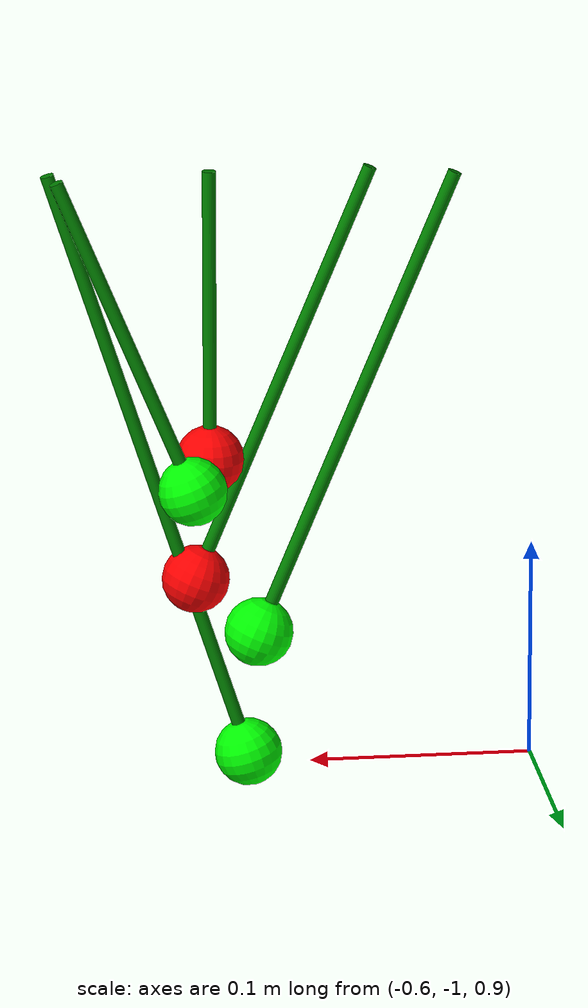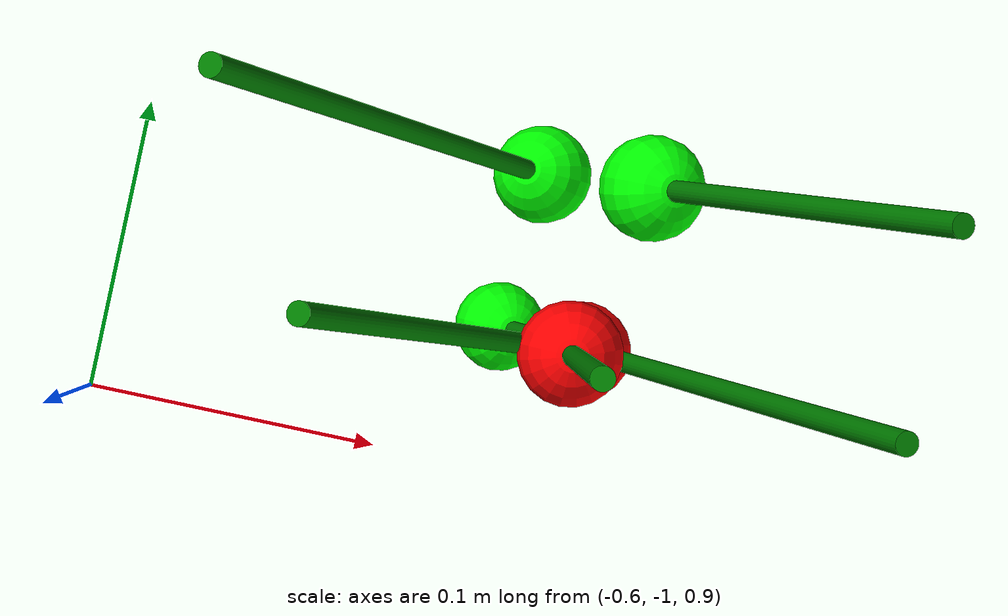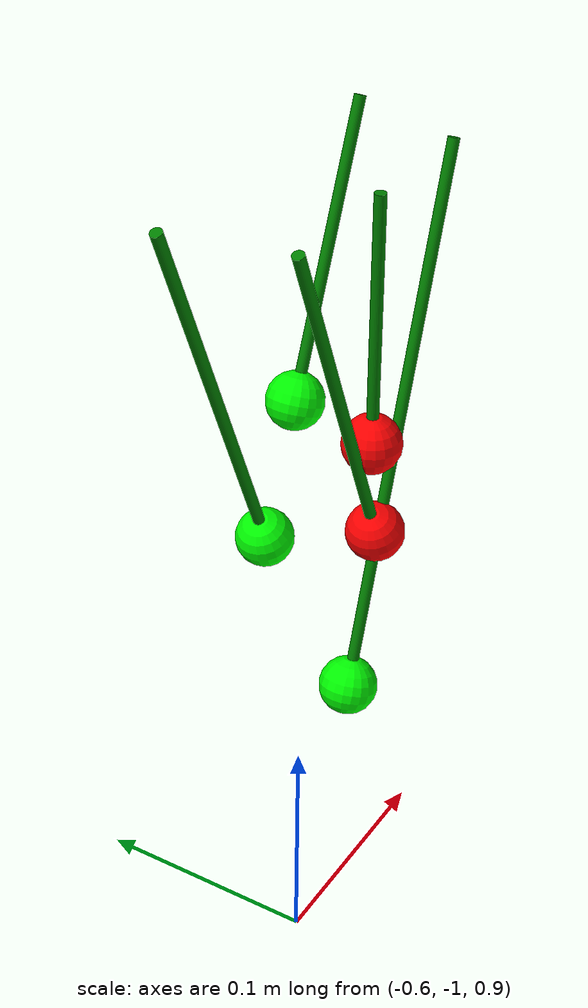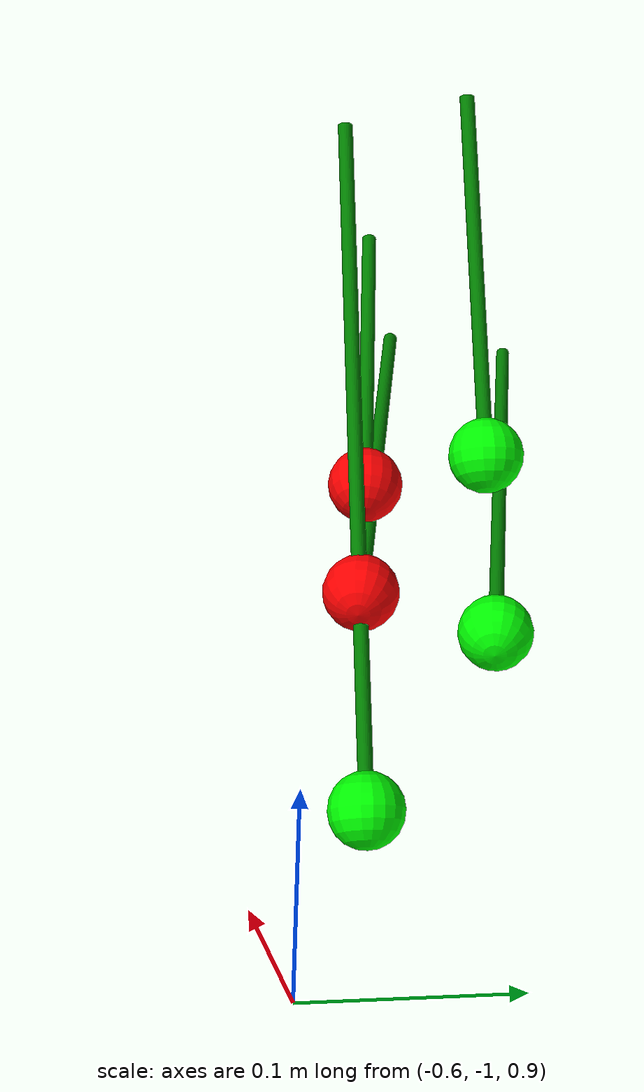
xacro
<?xml version="1.0"?>
<robot xmlns:xacro="http://www.ros.org/wiki/xacro" name="straw_cluster11">

<xacro:arg name="tf_prefix" default=""/>

<link name="world"/>

<xacro:arg name="parent_cluster" default="world"/>

<!-- Robot21 -->
<link name="$(arg tf_prefix)/yball_stem111">
  <gravity>1</gravity>
  <inertial>
    <origin xyz="0 0 0" rpy="0 0 0"/>
    <mass value=".00001"/>
    <inertia ixx="0.0000004" ixy="0.0" ixz="0.0" iyy="0.0000004" iyz="0.0" izz="0.0000004" />
  </inertial>
  <visual><geometry><sphere radius=".00001"/></geometry></visual>
  <collision><geometry><sphere radius=".00001"/></geometry></collision>
</link>
<gazebo reference="$(arg tf_prefix)/yball_stem111">
  <material>Gazebo/Green</material>
</gazebo>

<joint name="$(arg tf_prefix)/stem111y" type="revolute" >
  <parent link="$(arg parent_cluster)" />
  <child link="$(arg tf_prefix)/yball_stem111" />
  <origin xyz="-0.45 -0.95 1.19" rpy="0 0 0"/>
  <axis xyz="0 1 0" />
  <dynamics damping="0.0001" friction="0.0002"/>
  <limit
      lower="-${pi}" upper="${pi}"
      effort="0.1" velocity="1" />
</joint>

<link name="$(arg tf_prefix)/xball_stem111">
  <gravity>1</gravity>
  <inertial>
    <origin xyz="0 0 0" rpy="0 0 0"/>
    <mass value=".00001"/>
    <inertia ixx="0.0000004" ixy="0.0" ixz="0.0" iyy="0.0000004" iyz="0.0" izz="0.0000004" />
  </inertial>
  <visual><geometry><sphere radius=".00001"/></geometry></visual>
  <collision><geometry><sphere radius=".00001"/></geometry></collision>
</link>
<gazebo reference="$(arg tf_prefix)/xball_stem111">
  <material>Gazebo/Green</material>
</gazebo>

<joint name="$(arg tf_prefix)/stem111x" type="revolute" >
  <parent link="$(arg tf_prefix)/yball_stem111"/>
  <child link="$(arg tf_prefix)/xball_stem111"/>
  <origin xyz="0 0 0" rpy="0 0 0"/>
  <axis xyz="1 0 0" />
  <dynamics damping="0.0001" friction="0.0002" />
  <limit
      lower="-${pi}" upper="${pi}"
      effort="0.1" velocity="0.1" />
</joint>

<!-- Define stem of straw111 -->
<link name="$(arg tf_prefix)/stem111">
  <inertial>
    <origin xyz="0 0 0" rpy="0 0 0"/>
    <mass value="0.0002"/>
    <inertia
      ixx="0.0000000005" ixy="0.0" ixz="0.0"
      iyy="0.0000000005" iyz="0.0"
      izz="0.0000000005"/>
  </inertial>
  <collision>
    <geometry>
    <cylinder length="0.13" radius="0.003"/>
    </geometry>
    <material name="green">
      <color rgba="0 ${128/255} 0 1"/>
    </material>
    <origin xyz="0 0 -0.065" rpy="0 0 0"/>
  </collision>
  <visual>
    <geometry>
    <cylinder length="0.13" radius="0.003"/>
    </geometry>
    <material name="green">
      <color rgba="0 ${128/255} 0 1"/>
    </material>
    <origin xyz="0 0 -0.065" rpy="0 0 0"/>
  </visual>
</link>
<gazebo reference="$(arg tf_prefix)/stem111">
  <mu1>0.01</mu1>
  <mu2>0.01</mu2>
  <selfCollide>true</selfCollide>
  <maxContacts>2</maxContacts>
  <minDepth>0</minDepth>
  <maxVel>0.01</maxVel>
  <kp  value="1" />
  <kd  value="0.1" />
  <material>Gazebo/Green</material>
</gazebo>

<joint name="$(arg tf_prefix)/xball_stem111" type="fixed">
  <parent link="$(arg tf_prefix)/xball_stem111"/>
  <child link="$(arg tf_prefix)/stem111"/>
  <origin xyz="0 0 0" rpy="0 0 0"/>
</joint>

<!-- Define straw111 -->
<link name="$(arg tf_prefix)/straw111">
  <gravity>1</gravity>
  <inertial>
    <origin xyz="0 0 0" rpy="0 0 0"/>
    <mass value="0.0002"/>
    <inertia
      ixx="0.00000018" ixy="0.0" ixz="0.0"
      iyy="0.00000018" iyz="0.0"
      izz="0.00000018"/>
  </inertial>
  <collision>
    <geometry>
      <sphere radius="0.015"/>
    </geometry>
  </collision>
  <visual>
    <geometry>
    <sphere radius="0.015"/>
    </geometry>
    <material name="Red">
      <color rgba="1 0 0 1"/>
    </material>
  </visual>
</link>
<gazebo reference="$(arg tf_prefix)/straw111">
  <mu1>0.01</mu1>
  <mu2>0.01</mu2>
  <selfCollide>true</selfCollide>
  <maxContacts>2</maxContacts>
  <minDepth>0</minDepth>
  <maxVel>0.01</maxVel>
  <kp  value="1000" />
  <kd  value="1" />
  <material>Gazebo/Red</material>
</gazebo>

<joint name="$(arg tf_prefix)/straw1_stem111" type="revolute">
  <parent link="$(arg tf_prefix)/stem111"/>
  <child link="$(arg tf_prefix)/straw111"/>
  <origin xyz="0 0 -0.13" rpy="0 0 0"/>
  <axis xyz="0 1 0" />
  <dynamics damping="0.0000001" friction="0.0000002"/>
  <limit
      lower="-${pi}" upper="${pi}"
      effort="0.01" velocity="0.1" />
</joint>

<!-- Robot22 -->
<link name="$(arg tf_prefix)/yball_stem112">
  <gravity>1</gravity>
  <inertial>
    <origin xyz="0 0 0" rpy="0 0 0"/>
    <mass value=".00001"/>
    <inertia ixx="0.00001" ixy="0.0" ixz="0.0" iyy="0.00001" iyz="0.0" izz="0.00001" />
  </inertial>
  <visual><geometry><sphere radius=".00001"/></geometry></visual>
  <collision><geometry><sphere radius=".00001"/></geometry></collision>
</link>
<gazebo reference="$(arg tf_prefix)/yball_stem112">
  <material>Gazebo/Green</material>
</gazebo>

<joint name="$(arg tf_prefix)/stem112y" type="revolute" >
  <parent link="$(arg parent_cluster)" />
  <child link="$(arg tf_prefix)/yball_stem112" />
  <origin xyz="-0.38 -0.95 1.19" rpy="0 ${pi/10} 0"/>
  <axis xyz="0 1 0" />
  <dynamics damping="0.001" friction="0.002" />
  <limit
      lower="-${pi}" upper="${pi}"
      effort="100" velocity="1" />
</joint>

<link name="$(arg tf_prefix)/xball_stem112">
  <gravity>1</gravity>
  <inertial>
    <origin xyz="0 0 0" rpy="0 0 0"/>
    <mass value=".00001"/>
    <inertia ixx="0.00001" ixy="0.0" ixz="0.0" iyy="0.00001" iyz="0.0" izz="0.00001" />
  </inertial>
  <visual><geometry><sphere radius=".00001"/></geometry></visual>
  <collision><geometry><sphere radius=".00001"/></geometry></collision>
</link>
<gazebo reference="$(arg tf_prefix)/xball_stem112">
  <material>Gazebo/Green</material>
</gazebo>

<joint name="$(arg tf_prefix)/stem112x" type="revolute" >
  <parent link="$(arg tf_prefix)/yball_stem112"/>
  <child link="$(arg tf_prefix)/xball_stem112"/>
  <origin xyz="0 0 0" rpy="0 0 0"/>
  <axis xyz="1 0 0" />
  <dynamics damping="0.001" friction="0.002" />
  <limit
      lower="-${pi}" upper="${pi}"
      effort="100" velocity="1" />
</joint>

<!-- Define stem of straw112 -->
<link name="$(arg tf_prefix)/stem112">
  <gravity>1</gravity>
  <inertial>
    <origin xyz="0 0 0" rpy="0 0 0"/>
    <mass value="0.0001"/>
    <inertia
      ixx="0.0000000005" ixy="0.0" ixz="0.0"
      iyy="0.0000000005" iyz="0.0"
      izz="0.0000000005"/>
  </inertial>
  <collision>
    <geometry>
    <cylinder length="0.28" radius="0.003"/> <!-- was 0.15 -->
    </geometry>
    <material name="green">
      <color rgba="0 ${128/255} 0 1"/>
    </material>
    <origin xyz="0 0 -0.14" rpy="0 0 0"/>
  </collision>
  <visual>
    <geometry>
    <cylinder length="0.28" radius="0.003"/>
    </geometry>
    <material name="green">
      <color rgba="0 ${128/255} 0 1"/>
    </material>
    <origin xyz="0 0 -0.14" rpy="0 0 0"/>
  </visual>
</link>
<gazebo reference="$(arg tf_prefix)/stem112">
  <mu1>0.01</mu1>
  <mu2>0.01</mu2>
  <selfCollide>true</selfCollide>
  <maxContacts>2</maxContacts>
  <minDepth>0</minDepth>
  <maxVel>0.01</maxVel>
  <kp value="1000" />
  <kd value="1" />
  <material>Gazebo/Green</material>
</gazebo>

<joint name="$(arg tf_prefix)/xball_stem112" type="fixed">
  <parent link="$(arg tf_prefix)/xball_stem112"/>
  <child link="$(arg tf_prefix)/stem112"/>
  <origin xyz="0 0 0" rpy="0 0 0"/>
</joint>

<!-- Define straw112 -->
<link name="$(arg tf_prefix)/straw112">
  <gravity>1</gravity>
  <inertial>
    <origin xyz="0 0 0" rpy="0 0 0"/>
    <mass value="0.0002"/>
    <inertia
      ixx="0.00000018" ixy="0.0" ixz="0.0"
      iyy="0.00000018" iyz="0.0"
      izz="0.00000018"/>
  </inertial>
  <collision>
    <geometry>
      <sphere radius="0.015"/>
    </geometry>
  </collision>
  <visual>
    <geometry>
    <sphere radius="0.015"/>
    </geometry>
    <material name="green">
      <color rgba="0 1 0 1"/>
    </material>
  </visual>
</link>
<gazebo reference="$(arg tf_prefix)/straw112">
  <mu1>0.01</mu1>
  <mu2>0.01</mu2>
  <selfCollide>true</selfCollide>
  <maxContacts>2</maxContacts>
  <minDepth>0</minDepth>
  <maxVel>0.01</maxVel>
  <kp  value="1000" />
  <kd  value="1" />
  <material>Gazebo/Green</material>
</gazebo>

<joint name="$(arg tf_prefix)/straw112_stem112" type="revolute">
  <parent link="$(arg tf_prefix)/stem112"/>
  <child link="$(arg tf_prefix)/straw112"/>
  <origin xyz="0 0 -0.28" rpy="0 0 0"/>
  <axis xyz="0 1 0" />
  <dynamics damping="0.0000001" friction="0.0000002"/>
  <limit
      lower="-${pi}" upper="${pi}"
      effort="1" velocity="0.1" />
</joint>

<!-- Robot 23 -->
<link name="$(arg tf_prefix)/yball_stem113">
  <gravity>1</gravity>
  <inertial>
    <origin xyz="0 0 0" rpy="0 0 0"/>
    <mass value=".00001"/>
    <inertia ixx="0.00001" ixy="0.0" ixz="0.0" iyy="0.00001" iyz="0.0" izz="0.00001" />
  </inertial>
  <visual><geometry><sphere radius=".00001"/></geometry></visual>
  <collision><geometry><sphere radius=".00001"/></geometry></collision>
</link>
<gazebo reference="$(arg tf_prefix)/yball_stem113">
  <material>Gazebo/Green</material>
</gazebo>

<joint name="$(arg tf_prefix)/stem113y" type="revolute" >
  <parent link="$(arg parent_cluster)" />
  <child link="$(arg tf_prefix)/yball_stem113" />
  <origin xyz="-0.52 -0.95 1.19" rpy="0 ${-pi/8} 0"/>
  <axis xyz="0 1 0" />
  <dynamics damping="0.0001" friction="0.0002" />
  <limit
      lower="-${pi}" upper="${pi}"
      effort="10" velocity="1" />
</joint>

<link name="$(arg tf_prefix)/xball_stem113">
  <gravity>1</gravity>
  <inertial>
    <origin xyz="0 0 0" rpy="0 0 0"/>
    <mass value=".00001"/>
    <inertia ixx="0.00001" ixy="0.0" ixz="0.0" iyy="0.00001" iyz="0.0" izz="0.00001" />
  </inertial>
  <visual><geometry><sphere radius=".00001"/></geometry></visual>
  <collision><geometry><sphere radius=".00001"/></geometry></collision>
</link>
<gazebo reference="$(arg tf_prefix)/xball_stem113">
  <material>Gazebo/Green</material>
</gazebo>

<joint name="$(arg tf_prefix)/stem113x" type="revolute" >
  <parent link="$(arg tf_prefix)/yball_stem113"/>
  <child link="$(arg tf_prefix)/xball_stem113"/>
  <origin xyz="0 0 0" rpy="0 0 0"/>
  <axis xyz="1 0 0" />
  <dynamics damping="0.0001" friction="0.0002" />
  <limit
      lower="-${pi}" upper="${pi}"
      effort="10" velocity="1" />
</joint>

<!-- Define stem of straw113 -->
<link name="$(arg tf_prefix)/stem113">
  <gravity>1</gravity>
  <inertial>
    <origin xyz="0 0 0" rpy="0 0 0"/>
    <mass value="0.0001"/>
    <inertia
      ixx="0.0000000005" ixy="0.0" ixz="0.0"
      iyy="0.0000000005" iyz="0.0"
      izz="0.0000000005"/>
  </inertial>
  <collision>
    <geometry>
    <cylinder length="0.2" radius="0.003"/> <!-- was 0.15 -->
    </geometry>
    <material name="green">
      <color rgba="0 ${128/255} 0 1"/>
    </material>
    <origin xyz="0 0 -0.1" rpy="0 0 0"/>
  </collision>
  <visual>
    <geometry>
    <cylinder length="0.2" radius="0.003"/>
    </geometry>
    <material name="green">
      <color rgba="0 ${128/255} 0 1"/>
    </material>
    <origin xyz="0 0 -0.1" rpy="0 0 0"/>
  </visual>
</link>
<gazebo reference="$(arg tf_prefix)/stem113">
  <mu1>0.01</mu1>
  <mu2>0.01</mu2>
  <selfCollide>true</selfCollide>
  <maxContacts>2</maxContacts>
  <minDepth>0</minDepth>
  <maxVel>0.01</maxVel>
  <kp  value="10" />
  <kd  value="1" />
  <material>Gazebo/Green</material>
</gazebo>

<joint name="$(arg tf_prefix)/xball_stem113" type="fixed">
  <parent link="$(arg tf_prefix)/xball_stem113"/>
  <child link="$(arg tf_prefix)/stem113"/>
  <origin xyz="0 0 0" rpy="0 0 0"/>
</joint>

<!-- Define straw113 -->
<link name="$(arg tf_prefix)/straw113">
  <gravity>1</gravity>
  <inertial>
    <origin xyz="0 0 0" rpy="0 0 0"/>
    <mass value="0.0002"/>
    <inertia
      ixx="0.00000018" ixy="0.0" ixz="0.0"
      iyy="0.00000018" iyz="0.0"
      izz="0.00000018"/>
  </inertial>
  <collision>
    <geometry>
      <sphere radius="0.015"/>
    </geometry>
  </collision>
  <visual>
    <geometry>
    <sphere radius="0.015"/>
    </geometry>
    <material name="Red">
      <color rgba="1 0 0 1"/>
    </material>
  </visual>
</link>
<gazebo reference="$(arg tf_prefix)/straw113">
  <mu1>0.01</mu1>
  <mu2>0.01</mu2>
  <selfCollide>true</selfCollide>
  <maxContacts>2</maxContacts>
  <minDepth>0</minDepth>
  <maxVel>0.01</maxVel>
  <kp  value="10" />
  <kd  value="1" />
  <material>Gazebo/Red</material>
</gazebo>

<joint name="$(arg tf_prefix)/straw113_stem113" type="revolute">
  <parent link="$(arg tf_prefix)/stem113"/>
  <child link="$(arg tf_prefix)/straw113"/>
  <origin xyz="0 0 -0.2" rpy="0 0 0"/>
  <axis xyz="0 1 0" />
  <dynamics damping="0.0000001" friction="0.0000002"/>
  <limit
      lower="-${pi}" upper="${pi}"
      effort="0.01" velocity="0.1" />
</joint>

<!-- Robot24 -->
<link name="$(arg tf_prefix)/yball_stem114">
  <gravity>1</gravity>
  <inertial>
    <origin xyz="0 0 0" rpy="0 0 0"/>
    <mass value=".00001"/>
    <inertia ixx="0.00001" ixy="0.0" ixz="0.0" iyy="0.00001" iyz="0.0" izz="0.00001" />
  </inertial>
  <visual><geometry><sphere radius=".00001"/></geometry></visual>
  <collision><geometry><sphere radius=".00001"/></geometry></collision>
</link>
<gazebo reference="$(arg tf_prefix)/yball_stem114">
  <material>Gazebo/Green</material>
</gazebo>

<joint name="$(arg tf_prefix)/stem114y" type="revolute" >
  <parent link="$(arg parent_cluster)" />
  <child link="$(arg tf_prefix)/yball_stem114" />
  <origin xyz="-0.38 -0.9 1.2" rpy="0 ${pi/8} 0"/>
  <axis xyz="0 1 0" />
  <dynamics damping="0.001" friction="0.002" />
  <limit
      lower="-${pi}" upper="${pi}"
      effort="100" velocity="1" />
</joint>

<link name="$(arg tf_prefix)/xball_stem114">
  <gravity>1</gravity>
  <inertial>
    <origin xyz="0 0 0" rpy="0 0 0"/>
    <mass value=".00001"/>
    <inertia ixx="0.00001" ixy="0.0" ixz="0.0" iyy="0.00001" iyz="0.0" izz="0.00001" />
  </inertial>
  <visual><geometry><sphere radius=".00001"/></geometry></visual>
  <collision><geometry><sphere radius=".00001"/></geometry></collision>
</link>
<gazebo reference="$(arg tf_prefix)/xball_stem114">
  <material>Gazebo/Green</material>
</gazebo>

<joint name="$(arg tf_prefix)/stem114x" type="revolute" >
  <parent link="$(arg tf_prefix)/yball_stem114"/>
  <child link="$(arg tf_prefix)/xball_stem114"/>
  <origin xyz="0 0 0" rpy="0 0 0"/>
  <axis xyz="1 0 0" />
  <dynamics damping="0.001" friction="0.002" />
  <limit
      lower="-${pi}" upper="${pi}"
      effort="100" velocity="1" />
</joint>

<!-- Define stem of straw114 -->
<link name="$(arg tf_prefix)/stem114">
  <gravity>1</gravity>
  <inertial>
    <origin xyz="0 0 0" rpy="0 0 0"/>
    <mass value="0.0001"/>
    <inertia
      ixx="0.0000000005" ixy="0.0" ixz="0.0"
      iyy="0.0000000005" iyz="0.0"
      izz="0.0000000005"/>
  </inertial>
  <collision>
    <geometry>
    <cylinder length="0.15" radius="0.003"/> <!-- was 0.15 -->
    </geometry>
    <material name="green">
      <color rgba="0 ${128/255} 0 1"/>
    </material>
    <origin xyz="0 0 -0.075" rpy="0 0 0"/>
  </collision>
  <visual>
    <geometry>
    <cylinder length="0.15" radius="0.003"/>
    </geometry>
    <material name="green">
      <color rgba="0 ${128/255} 0 1"/>
    </material>
    <origin xyz="0 0 -0.075" rpy="0 0 0"/>
  </visual>
</link>
<gazebo reference="$(arg tf_prefix)/stem114">
  <mu1>0.01</mu1>
  <mu2>0.01</mu2>
  <selfCollide>true</selfCollide>
  <maxContacts>2</maxContacts>
  <minDepth>0</minDepth>
  <maxVel>0.01</maxVel>
  <kp value="1000" />
  <kd value="1" />
  <material>Gazebo/Green</material>
</gazebo>

<joint name="$(arg tf_prefix)/xball_stem114" type="fixed">
  <parent link="$(arg tf_prefix)/xball_stem114"/>
  <child link="$(arg tf_prefix)/stem114"/>
  <origin xyz="0 0 0" rpy="0 0 0"/>
</joint>

<!-- Define straw114 -->
<link name="$(arg tf_prefix)/straw114">
  <gravity>1</gravity>
  <inertial>
    <origin xyz="0 0 0" rpy="0 0 0"/>
    <mass value="0.0002"/>
    <inertia
      ixx="0.00000018" ixy="0.0" ixz="0.0"
      iyy="0.00000018" iyz="0.0"
      izz="0.00000018"/>
  </inertial>
  <collision>
    <geometry>
      <sphere radius="0.015"/>
    </geometry>
  </collision>
  <visual>
    <geometry>
    <sphere radius="0.015"/>
    </geometry>
    <material name="green">
      <color rgba="0 1 0 1"/>
    </material>
  </visual>
</link>
<gazebo reference="$(arg tf_prefix)/straw114">
  <mu1>0.01</mu1>
  <mu2>0.01</mu2>
  <selfCollide>true</selfCollide>
  <maxContacts>2</maxContacts>
  <minDepth>0</minDepth>
  <maxVel>0.01</maxVel>
  <kp  value="1000" />
  <kd  value="1" />
  <material>Gazebo/Green</material>
</gazebo>

<joint name="$(arg tf_prefix)/straw114_stem114" type="revolute">
  <parent link="$(arg tf_prefix)/stem114"/>
  <child link="$(arg tf_prefix)/straw114"/>
  <origin xyz="0 0 -0.15" rpy="0 0 0"/>
  <axis xyz="0 1 0" />
  <dynamics damping="0.0000001" friction="0.0000002"/>
  <limit
      lower="-${pi}" upper="${pi}"
      effort="0.01" velocity="0.1" />
</joint>

<!-- Robot25 -->
<link name="$(arg tf_prefix)/yball_stem115">
  <gravity>1</gravity>
  <inertial>
    <origin xyz="0 0 0" rpy="0 0 0"/>
    <mass value=".00001"/>
    <inertia ixx="0.00001" ixy="0.0" ixz="0.0" iyy="0.00001" iyz="0.0" izz="0.00001" />
  </inertial>
  <visual><geometry><sphere radius=".00001"/></geometry></visual>
  <collision><geometry><sphere radius=".00001"/></geometry></collision>
</link>
<gazebo reference="$(arg tf_prefix)/yball_stem115">
  <material>Gazebo/Green</material>
</gazebo>

<joint name="$(arg tf_prefix)/stem115y" type="revolute" >
  <parent link="$(arg parent_cluster)" />
  <child link="$(arg tf_prefix)/yball_stem115" />
  <origin xyz="-0.55 -0.9 1.2" rpy="0 ${-pi/8} 0"/>
  <axis xyz="0 1 0" />
  <dynamics damping="0.001" friction="0.002" />
  <limit
      lower="-${pi}" upper="${pi}"
      effort="100" velocity="1" />
</joint>

<link name="$(arg tf_prefix)/xball_stem115">
  <gravity>1</gravity>
  <inertial>
    <origin xyz="0 0 0" rpy="0 0 0"/>
    <mass value=".00001"/>
    <inertia ixx="0.00001" ixy="0.0" ixz="0.0" iyy="0.00001" iyz="0.0" izz="0.00001" />
  </inertial>
  <visual><geometry><sphere radius=".00001"/></geometry></visual>
  <collision><geometry><sphere radius=".00001"/></geometry></collision>
</link>
<gazebo reference="$(arg tf_prefix)/xball_stem115">
  <material>Gazebo/Green</material>
</gazebo>

<joint name="$(arg tf_prefix)/stem115x" type="revolute" >
  <parent link="$(arg tf_prefix)/yball_stem115"/>
  <child link="$(arg tf_prefix)/xball_stem115"/>
  <origin xyz="0 0 0" rpy="0 0 0"/>
  <axis xyz="1 0 0" />
  <dynamics damping="0.001" friction="0.002" />
  <limit
      lower="-${pi}" upper="${pi}"
      effort="100" velocity="1" />
</joint>

<!-- Define stem of straw115 -->
<link name="$(arg tf_prefix)/stem115">
  <gravity>1</gravity>
  <inertial>
    <origin xyz="0 0 0" rpy="0 0 0"/>
    <mass value="0.0001"/>
    <inertia
      ixx="0.0000000005" ixy="0.0" ixz="0.0"
      iyy="0.0000000005" iyz="0.0"
      izz="0.0000000005"/>
  </inertial>
  <collision>
    <geometry>
    <cylinder length="0.22" radius="0.003"/> <!-- was 0.15 -->
    </geometry>
    <material name="green">
      <color rgba="0 ${128/255} 0 1"/>
    </material>
    <origin xyz="0 0 -0.11" rpy="0 0 0"/>
  </collision>
  <visual>
    <geometry>
    <cylinder length="0.22" radius="0.003"/>
    </geometry>
    <material name="green">
      <color rgba="0 ${128/255} 0 1"/>
    </material>
    <origin xyz="0 0 -0.11" rpy="0 0 0"/>
  </visual>
</link>
<gazebo reference="$(arg tf_prefix)/stem115">
  <mu1>0.01</mu1>
  <mu2>0.01</mu2>
  <selfCollide>true</selfCollide>
  <maxContacts>2</maxContacts>
  <minDepth>0</minDepth>
  <maxVel>0.01</maxVel>
  <kp value="1000" />
  <kd value="1" />
  <material>Gazebo/Green</material>
</gazebo>

<joint name="$(arg tf_prefix)/xball_stem115" type="fixed">
  <parent link="$(arg tf_prefix)/xball_stem115"/>
  <child link="$(arg tf_prefix)/stem115"/>
  <origin xyz="0 0 0" rpy="0 0 0"/>
</joint>

<!-- Define straw115 -->
<link name="$(arg tf_prefix)/straw115">
  <gravity>1</gravity>
  <inertial>
    <origin xyz="0 0 0" rpy="0 0 0"/>
    <mass value="0.0002"/>
    <inertia
      ixx="0.00000018" ixy="0.0" ixz="0.0"
      iyy="0.00000018" iyz="0.0"
      izz="0.00000018"/>
  </inertial>
  <collision>
    <geometry>
      <sphere radius="0.015"/>
    </geometry>
  </collision>
  <visual>
    <geometry>
    <sphere radius="0.015"/>
    </geometry>
    <material name="green">
      <color rgba="0 1 0 1"/>
    </material>
  </visual>
</link>
<gazebo reference="$(arg tf_prefix)/straw115">
  <mu1>0.01</mu1>
  <mu2>0.01</mu2>
  <selfCollide>true</selfCollide>
  <maxContacts>2</maxContacts>
  <minDepth>0</minDepth>
  <maxVel>0.01</maxVel>
  <kp  value="1000" />
  <kd  value="1" />
  <material>Gazebo/Green</material>
</gazebo>

<joint name="$(arg tf_prefix)/straw115_stem115" type="revolute">
  <parent link="$(arg tf_prefix)/stem115"/>
  <child link="$(arg tf_prefix)/straw115"/>
  <origin xyz="0 0 -0.22" rpy="0 0 0"/>
  <axis xyz="0 1 0" />
  <dynamics damping="0.0000001" friction="0.0000002"/>
  <limit
      lower="-${pi}" upper="${pi}"
      effort="0.01" velocity="0.1" />
</joint>

</robot>
